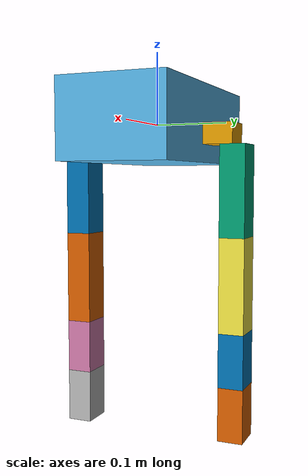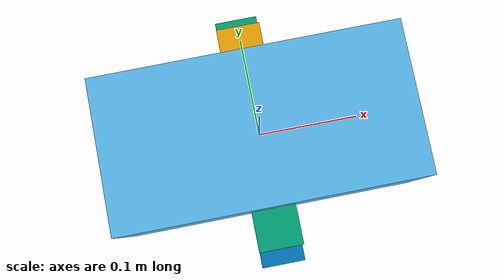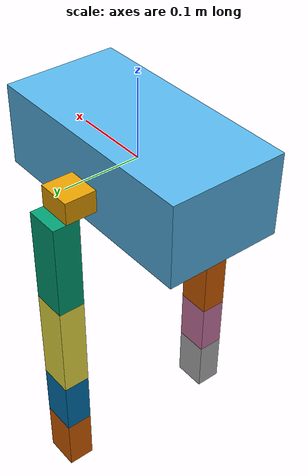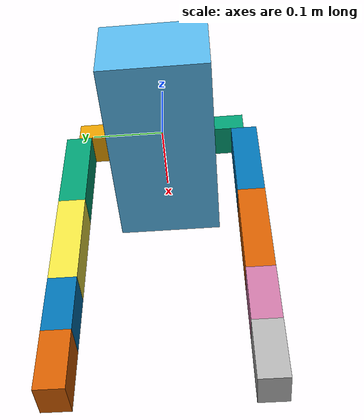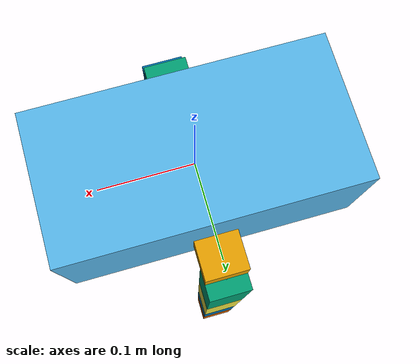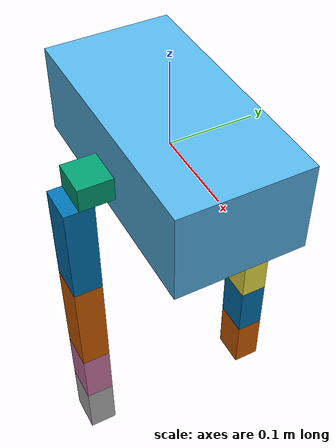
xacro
<?xml version="1.0" ?>
<robot
  xmlns:xacro="http://www.ros.org/wiki/xacro"
  name="body">
  <xacro:include filename="$(find simple_biped)/urdf/gazebo.xacro" />
  <xacro:ros_control prefix="terop"/>
 <xacro:property name="body_height" value="0.106" />
 <xacro:property name="body_width" value="0.150" />
 <xacro:property name="body_large" value="0.300" />
  <link name="base_link"/>

  <joint name="base_link_to_body" type="fixed">
    <parent link="base_link"/>
    <child link="body"/>
  </joint>

  <link name="body">
    <inertial>
      <origin xyz="-0.003053 -0.038651 -0.019268" />
      <mass value="0.97559947"/>
      <inertia ixx="3.1081800"  ixy="-0.25460189"  ixz="2.0318174" iyy="6.3787776" iyz="0.16417863" izz="5.3316425" />
    </inertial>
    <visual>
      <!--origin xyz="-0.0235 0 -0.03525" rpy="0 0 0" /-->
      <origin xyz="0 0 0" rpy="0 0 0" />
      <geometry>
        <box size="${body_large} ${body_width} ${body_height}" />
      </geometry>
    </visual>
    <collision>
      <geometry>
        <box size="${body_large} ${body_width} ${body_height}" />
      </geometry>
    </collision>
  </link>

    <!-- Arm -->
  <xacro:include filename="$(find simple_biped)/urdf/leg.xacro" />
  <!-- Left Arm -->
  <xacro:leg side="l" parent="body" reflect="-1" body_height="${body_height}" body_width="${body_width}" body_large="${body_large}"/>
  <!-- Right Arm -->
   <xacro:leg side="r" parent="body" reflect="1" body_height="${body_height}" body_width="${body_width}" body_large="${body_large}"/>

</robot>

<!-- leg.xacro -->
<robot
  xmlns:xacro="http://www.ros.org/wiki/xacro"
  name="leg">

 <!--xacro:property name="body_height" value="0.106" /-->
 <!--xacro:property name="body_width" value="0.109" /-->
 <!--xacro:property name="body_large" value="0.102" /-->
 <xacro:property name="M_PI" value="3.1415926535897931" />
<xacro:property name="pelvis_height" value="0.028652" />
 <xacro:property name="pelvis_width" value="0.08175" />
 <xacro:property name="pelvis_large" value="0.045" />
 <xacro:property name="thigh_virtual_height" value="0.001" />
 <xacro:property name="thigh_virtual_width" value="0.001" />
 <xacro:property name="thigh_virtual_large" value="0.001" />
<xacro:property name="thigh_height" value="0.125" />
 <xacro:property name="thigh_width" value="0.035" />
 <xacro:property name="thigh_large" value="0.045" />
 <xacro:property name="tibia_height" value="0.130" />
 <xacro:property name="tibia_width" value="0.035" />
 <xacro:property name="tibia_large" value="0.045" />
  <xacro:property name="ankle_height" value="0.0745" />
 <xacro:property name="ankle_width" value="0.035" />
 <xacro:property name="ankle_large" value="0.045" />
   <xacro:property name="phalange_height" value="0.0745" />
 <xacro:property name="phalange_width" value="0.035" />
 <xacro:property name="phalange_large" value="0.045" />
  <xacro:macro name="leg" params="side parent reflect body_height body_width body_large">

      <!-- Transmissions -->
    <xacro:joint_transmission joint="${side}_thigh_yaw_joint"/>
    <xacro:joint_transmission joint="${side}_thigh_pitch_joint"/>
    <xacro:joint_transmission joint="${side}_tibia_joint"/>
    <xacro:joint_transmission joint="${side}_ankle_joint"/>
    <xacro:joint_transmission joint="${side}_phalange_joint"/>
  <link name="${side}_pelvis" >
    <inertial>
      <origin xyz="0.000000 0.000480 0.018437" />
      <mass value="0.167"/>
      <inertia ixx="0.12259691"  ixy="0.00071127469"  ixz="0.00081143913" iyx="0.00071127469" iyy="0.11066637" iyz="-0.0071635476" izx="0.00081143913" izy="-0.0071635476" izz="0.041877668" />
    </inertial>
    <visual>
      <origin xyz="0 0 ${-1*pelvis_height/2}" rpy="0 0 0" />
      <geometry>
        <box size="${pelvis_large} ${pelvis_width} ${pelvis_height}"/>
      </geometry>
    </visual>
    <collision>
      <origin xyz="0 0 ${-1*pelvis_height/2}" rpy="0 0 0" />
      <geometry>
        <box size="${pelvis_large} ${pelvis_width} ${pelvis_height}"/>
      </geometry>
    </collision>
  </link>

  <link name="${side}_thigh_yaw" >
    <inertial>
      <origin xyz="0.000079 0.018242 0.013873" />
      <mass value="0.11904336"/>
      <inertia ixx="0.097950272"  ixy="0.0012119368"  ixz="-0.00021223016" iyx="0.00122119368" iyy="0.032848287" iyz="-0.0019474021" izx="-0.00021223016" izy="-0.0019474021" izz="0.11493509" />
    </inertial>
    <visual>
      <origin xyz="0 0 0" rpy="0 0 0" />
      <geometry>
        <box size="${thigh_virtual_large} ${thigh_virtual_width} ${thigh_virtual_height}"/>
      </geometry>
    </visual>
    <collision>
      <geometry>
        <box size="${thigh_virtual_large} ${thigh_virtual_width} ${thigh_virtual_height}"/>
      </geometry>
    </collision>
  </link>

  <link name="${side}_thigh" >
    <inertial>
      <origin xyz="-0.062965 -0.000323 0.000692" />
      <mass value="0.11904336"/>
      <inertia ixx="0.097950272"  ixy="0.0012119368"  ixz="-0.00021223016" iyx="0.00122119368" iyy="0.032848287" iyz="-0.0019474021" izx="-0.00021223016" izy="-0.0019474021" izz="0.11493509" />
    </inertial>
    <visual>
      <origin xyz="0 0 ${-1*thigh_height/2}" rpy="0 0 0" />
      <geometry>
        <box size="${thigh_large} ${thigh_width} ${thigh_height}"/>
      </geometry>
    </visual>
    <collision>
      <origin xyz="0 0 ${-1*thigh_height/2}" rpy="0 0 0" />
      <geometry>
        <box size="${thigh_large} ${thigh_width} ${thigh_height}"/>
      </geometry>
    </collision>
  </link>

  <link name="${side}_tibia" >
    <inertial>
      <origin xyz="-0.053955 0.006548 -0.000592" />
      <mass value="0.070309794"/>
      <inertia ixx="0.093369608"  ixy="-0.00093567395"  ixz="-0.00023992085" iyx="-0.00093567395" iyy="0.046295534" iyz="-0.012858493" izx="-0.00023992085" izy="-0.012858493" izz="0.11351516" />
    </inertial>
    <visual>
      <origin xyz="0 0 ${-1*tibia_height/2}" rpy="0 0 0" />
      <geometry>
        <box size="${tibia_large} ${tibia_width} ${tibia_height}"/>
      </geometry>
    </visual>
    <collision>
      <origin xyz="0 0 ${-1*tibia_height/2}" rpy="0 0 0" />
      <geometry>
        <box size="${tibia_large} ${tibia_width} ${tibia_height}"/>
      </geometry>
    </collision>
  </link>

  <link name="${side}_ankle" >
    <inertial>
      <origin xyz="-0.000214 -0.018536 0.013873" />
      <mass value="0.16710792"/>
      <inertia ixx="0.12079175"  ixy="-0.00079781067"  ixz="-0.00039322246" iyx="-0.00079781067" iyy="0.10885465" iyz="0.0070770117" izx="-0.00039322246" izy="0.0070770117" izz="0.041871103" />
    </inertial>
    <visual>
      <origin xyz="0 0 ${-1*ankle_height/2}" rpy="0 0 0" />
      <geometry>
        <box size="${ankle_large} ${ankle_width} ${ankle_height}"/>
      </geometry>
    </visual>
    <collision>
      <geometry>
        <box size="${ankle_large} ${ankle_width} ${ankle_height}"/>
      </geometry>
    </collision>
  </link>

  <link name="${side}_phalange" >
    <inertial>
      <origin xyz="-0.000214 -0.018536 0.013873" />
      <mass value="0.16710792"/>
      <inertia ixx="0.12079175"  ixy="-0.00079781067"  ixz="-0.00039322246" iyx="-0.00079781067" iyy="0.10885465" iyz="0.0070770117" izx="-0.00039322246" izy="0.0070770117" izz="0.041871103" />
    </inertial>
    <visual>
      <origin xyz="0 0 ${-1*phalange_height/2}" rpy="0 0 0" />
      <geometry>
        <box size="${phalange_large} ${phalange_width} ${phalange_height}"/>
      </geometry>
    </visual>
    <collision>
      <geometry>
        <box size="${phalange_large} ${phalange_width} ${phalange_height}"/>
      </geometry>
    </collision>
  </link>

  <joint name="${side}_pelvis_joint" type="revolute">
    <parent link="${parent}"/>
    <child link="${side}_pelvis"/>
    <origin xyz="0 ${reflect*body_width/2} 0" rpy="0 0 0" />
    <axis xyz="0 0 1" />
    <limit effort="10" velocity="5.6548668" lower="${-75*M_PI/180}" upper="${45*M_PI/180}" />
  </joint>

  <joint name="${side}_thigh_yaw_joint" type="revolute">
    <parent link="${side}_pelvis"/>
    <child link="${side}_thigh_yaw"/>
    <origin xyz="0 ${reflect*pelvis_width/2} ${-1*pelvis_height}" rpy="0 0 0" />
    <axis xyz="0 0 1" />
    <limit effort="10" velocity="5.6548668" lower="-2.6179939" upper="2.6179939" />
  </joint>

  <joint name="${side}_thigh_pitch_joint" type="revolute">
    <parent link="${side}_thigh_yaw"/>
    <child link="${side}_thigh"/>
    <origin xyz="0 0 0" rpy="0 0 0" />
    <axis xyz="0 1 0" />
    <limit effort="10" velocity="5.6548668" lower="${-75*M_PI/180}" upper="${45*M_PI/180}"  />
  </joint>

  <joint name="${side}_tibia_joint" type="revolute">
    <parent link="${side}_thigh"/>
    <child link="${side}_tibia"/>
    <origin xyz="0 0 ${-1*thigh_height}" rpy="0 0 0" />
    <axis xyz="0 1 0" />
    <limit effort="10" velocity="5.6548668" lower="${0*M_PI/180}" upper="${150*M_PI/180}" />
  </joint>

  <joint name="${side}_ankle_joint" type="revolute">
    <parent link="${side}_tibia"/>
    <child link="${side}_ankle"/>
    <origin xyz="0 0 ${-1*tibia_height}" rpy="0 0 0" />
    <axis xyz="0 1 0" />
    <limit effort="10" velocity="5.6548668" lower="${-90*M_PI/180}" upper="${0*M_PI/180}" />
  </joint>

  <joint name="${side}_phalange_joint" type="revolute">
    <parent link="${side}_ankle"/>
    <child link="${side}_phalange"/>
    <origin xyz="0 0 ${-1*ankle_height}" rpy="0 0 0" />
    <axis xyz="0 1 0" />
    <limit effort="10" velocity="5.6548668" lower="-2.6179939" upper="2.6179939" />
  </joint>
</xacro:macro>
</robot>
